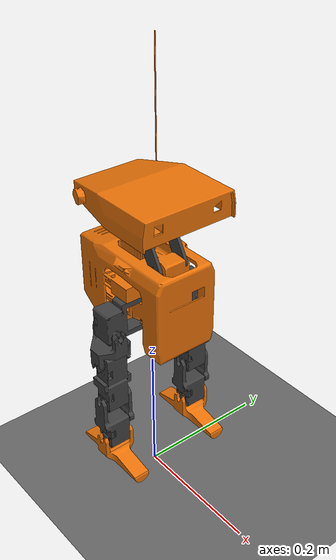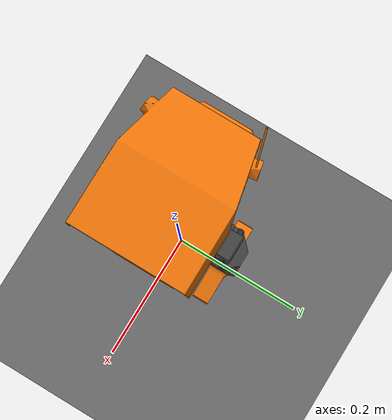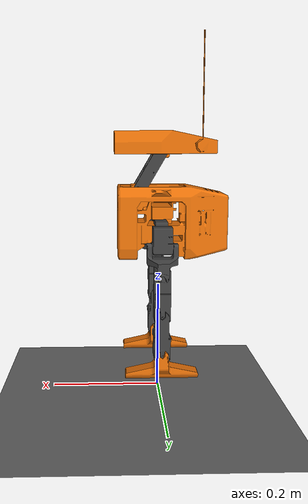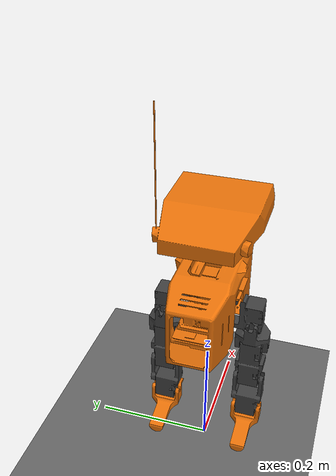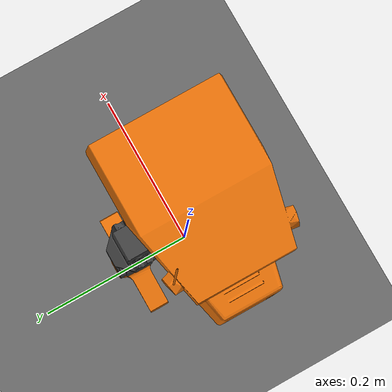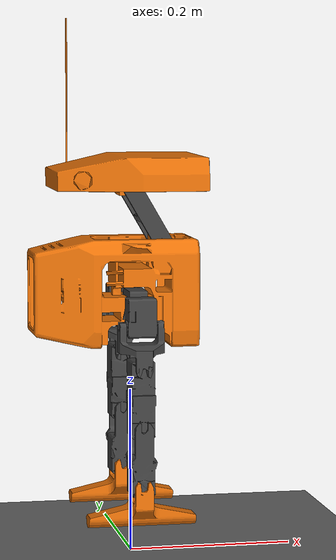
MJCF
<mujoco model="BD-5">
  <option iterations="50" timestep="0.001" solver="PGS" gravity="0 0 -9.81" />

  <compiler angle="radian" meshdir="meshes" eulerseq="zyx" autolimits="true" />

  <default>
    <joint limited="true" damping="1.084" armature="0.045" frictionloss="0.03" />
    <geom condim="4" contype="1" conaffinity="15" friction="0.9 0.2 0.2" solref="0.001 2" />
    <motor ctrllimited="true" />
    <equality solref="0.001 2" />
    <default class="visualgeom">
      <geom material="visualgeom" condim="1" contype="0" conaffinity="0" />
    </default>
  </default>

  <asset>
    <mesh name="BODY" file="BODY.STL" />
    <mesh name="NECK" file="NECK.STL" />
    <mesh name="HEAD" file="HEAD.STL" />
    <mesh name="HIP_LEFT" file="HIP_LEFT.STL" />
    <mesh name="HIP_R_LEFT" file="HIP_R_LEFT.STL" />
    <mesh name="THIGH_LEFT" file="THIGH_LEFT.STL" />
    <mesh name="CALF_LEFT" file="CALF_LEFT.STL" />
    <mesh name="FOOT_LEFT" file="FOOT_LEFT.STL" />
    <mesh name="HIP_RIGHT" file="HIP_RIGHT.STL" />
    <mesh name="HIP_R_RIGHT" file="HIP_R_RIGHT.STL" />
    <mesh name="THIGH_RIGHT" file="THIGH_RIGHT.STL" />
    <mesh name="CALF_RIGHT" file="CALF_RIGHT.STL" />
    <mesh name="FOOT_RIGHT" file="FOOT_RIGHT.STL" />
    <texture name="texplane" type="2d" builtin="checker" rgb1=".0 .0 .0" rgb2=".8 .8 .8" width="100" height="100" />
    <material name="matplane" reflectance="0." texture="texplane" texrepeat="1 1" texuniform="true" />
    <material name="visualgeom" rgba="0.5 0.9 0.2 1" />
  </asset>

  <worldbody>
    <light directional="true" diffuse="0.4 0.4 0.4" specular="0.1 0.1 0.1" pos="0 0 5.0" dir="0 0 -1" castshadow="false" />
    <light directional="true" diffuse="0.6 0.6 0.6" specular="0.2 0.2 0.2" pos="0 0 4" dir="0 0 -1" />
    <geom name="ground" type="plane" pos="0 0 0" size="100 100 0.001" quat="1 0 0 0" material="matplane" condim="3" conaffinity="15" />
    <camera name="fixed" pos="0 -3.0 0.8170777382037414" xyaxes="1 0 0 0 0 1" />
    <camera name="track" mode="trackcom" pos="0 -3.0 0.8170777382037414" xyaxes="1 0 0 0 0 1" />
    <body name="root" pos="0 0 0.3170777382037414" quat="1 0 0 0">
      <freejoint name="root" />
      <site name="imu" size="0.01" pos="0 0 0" />
      <geom type="mesh" rgba="0.9098 0.44314 0.031373 1" mesh="BODY" contype="1" conaffinity="0" density="0" group="1" class="visualgeom" />
      <geom type="mesh" rgba="0.9098 0.44314 0.031373 1" mesh="BODY" />
      <geom pos="0.039 -0.0017032 0.06245" quat="0.965768 0 -0.259409 0" type="mesh" rgba="0.25098 0.25098 0.25098 1" mesh="NECK" contype="1" conaffinity="0" density="0" group="1" class="visualgeom" />
      <geom type="mesh" rgba="0.25098 0.25098 0.25098 1" mesh="NECK" pos="0.039 -0.0017032 0.06245" quat="0.965768 0 -0.259409 0" />
      <geom pos="-0.00208669 -0.0017032 0.133414" quat="0.999999 0 0.00161 0" type="mesh" rgba="0.9098 0.44314 0.031373 1" mesh="HEAD" contype="1" conaffinity="0" density="0" group="1" class="visualgeom" />
      <geom type="mesh" rgba="0.9098 0.44314 0.031373 1" mesh="HEAD" pos="-0.00208669 -0.0017032 0.133414" quat="0.999999 0 0.00161 0" />
      <body name="HIP_LEFT" pos="0 0.01425 -0.0436">
        <inertial pos="0.00185 0.05284 0.02786" quat="0.460341 -0.108037 -0.0721488 0.878185" mass="0.101" diaginertia="4.55664e-05 4.08892e-05 2.89285e-05" />
        <joint name="left_hip_yaw" pos="0 0 0" axis="0 0 1" range="-0.37899 0.37899" actuatorfrcrange="-41 41" damping="1.084" armature="0.045" frictionloss="0.03" />
        <geom type="mesh" rgba="0.25098 0.25098 0.25098 1" mesh="HIP_LEFT" contype="1" conaffinity="0" density="0" group="1" class="visualgeom" />
        <geom type="mesh" rgba="0.25098 0.25098 0.25098 1" mesh="HIP_LEFT" />
        <body name="HIP_R_LEFT" pos="0 0.05925 0.01275">
          <inertial pos="0 0 -0.02515" quat="0.500015 0.499985 -0.500015 0.499985" mass="0.018" diaginertia="7.87081e-06 6.25751e-06 5.92983e-06" />
          <joint name="left_hip_roll" pos="0 0 0" axis="-1 0 0" range="-1.8827 0.38819" actuatorfrcrange="-41 41" damping="1.084" armature="0.045" frictionloss="0.03" />
          <geom type="mesh" rgba="0.25098 0.25098 0.25098 1" mesh="HIP_R_LEFT" contype="1" conaffinity="0" density="0" group="1" class="visualgeom" />
          <geom type="mesh" rgba="0.25098 0.25098 0.25098 1" mesh="HIP_R_LEFT" />
          <body name="THIGH_LEFT" pos="0 0 -0.05">
            <inertial pos="0 0.00215 -0.03525" quat="0.999988 0 0.0049764 0" mass="0.174" diaginertia="0.000111454 9.33677e-05 5.11876e-05" />
            <joint name="left_hip_pitch" pos="0 0 0" axis="0 1 0" range="-1.7492 1.7492" actuatorfrcrange="-41 41" damping="1.084" armature="0.045" frictionloss="0.03" />
            <geom type="mesh" rgba="0.25098 0.25098 0.25098 1" mesh="THIGH_LEFT" contype="1" conaffinity="0" density="0" group="1" class="visualgeom" />
            <geom type="mesh" rgba="0.25098 0.25098 0.25098 1" mesh="THIGH_LEFT" />
            <body name="CALF_LEFT" pos="0 0 -0.0705">
              <inertial pos="0.00034 0.00191 -0.05036" quat="0.900306 0.428328 -0.0231046 -0.0738207" mass="0.098" diaginertia="4.49978e-05 3.42466e-05 2.77625e-05" />
              <joint name="left_knee" pos="0 0 0" axis="0 -1 0" range="0 2.3829" actuatorfrcrange="-41 41" damping="1.084" armature="0.045" frictionloss="0.03" />
              <geom type="mesh" rgba="0.25098 0.25098 0.25098 1" mesh="CALF_LEFT" contype="1" conaffinity="0" density="0" group="1" class="visualgeom" />
              <geom type="mesh" rgba="0.25098 0.25098 0.25098 1" mesh="CALF_LEFT" />
              <body name="FOOT_LEFT" pos="0 0 -0.07064">
                <inertial pos="0 0 -0.03334" quat="0 0.707107 0 0.707107" mass="0.032" diaginertia="3.17443e-05 3.16424e-05 6.9037e-06" />
                <joint name="left_ankle" pos="0 0 0" axis="0 1 0" range="-1.8873 1.8873" actuatorfrcrange="-41 41" damping="1.084" armature="0.045" frictionloss="0.03" />
                <geom type="mesh" rgba="0.9098 0.44314 0.031373 1" mesh="FOOT_LEFT" contype="1" conaffinity="0" density="0" group="1" class="visualgeom" />
                <geom type="mesh" rgba="0.9098 0.44314 0.031373 1" mesh="FOOT_LEFT" />
              </body>
            </body>
          </body>
        </body>
      </body>
      <body name="HIP_RIGHT" pos="0 -0.01425 -0.0436">
        <inertial pos="0.00185 -0.0535 0.02786" quat="0.649192 0.572543 -0.368859 0.338655" mass="0.101" diaginertia="4.61603e-05 4.12116e-05 2.96353e-05" />
        <joint name="right_hip_yaw" pos="0 0 0" axis="0 0 1" range="-0.37899 0.37899" actuatorfrcrange="-41 41" damping="1.084" armature="0.045" frictionloss="0.03" />
        <geom type="mesh" rgba="0.25098 0.25098 0.25098 1" mesh="HIP_RIGHT" contype="1" conaffinity="0" density="0" group="1" class="visualgeom" />
        <geom type="mesh" rgba="0.25098 0.25098 0.25098 1" mesh="HIP_RIGHT" />
        <body name="HIP_R_RIGHT" pos="0 -0.05925 0.01275">
          <inertial pos="0 0 -0.02515" quat="-2.15792e-05 0.707107 2.15792e-05 0.707107" mass="0.018" diaginertia="7.87081e-06 6.25751e-06 5.92983e-06" />
          <joint name="right_hip_roll" pos="0 0 0" axis="1 0 0" range="-1.8827 0.38819" actuatorfrcrange="-41 41" damping="1.084" armature="0.045" frictionloss="0.03" />
          <geom type="mesh" rgba="0.25098 0.25098 0.25098 1" mesh="HIP_R_RIGHT" contype="1" conaffinity="0" density="0" group="1" class="visualgeom" />
          <geom type="mesh" rgba="0.25098 0.25098 0.25098 1" mesh="HIP_R_RIGHT" />
          <body name="THIGH_RIGHT" pos="0 0 -0.05">
            <inertial pos="0 0.00215 -0.03525" quat="0.999988 0 0.0049764 0" mass="0.174" diaginertia="0.000111454 9.33677e-05 5.11876e-05" />
            <joint name="right_hip_pitch" pos="0 0 0" axis="0 1 0" range="-1.7492 1.7492" actuatorfrcrange="-41 41" damping="1.084" armature="0.045" frictionloss="0.03" />
            <geom type="mesh" rgba="0.25098 0.25098 0.25098 1" mesh="THIGH_RIGHT" contype="1" conaffinity="0" density="0" group="1" class="visualgeom" />
            <geom type="mesh" rgba="0.25098 0.25098 0.25098 1" mesh="THIGH_RIGHT" />
            <body name="CALF_RIGHT" pos="0 0 -0.0705">
              <inertial pos="0.00034 0.00191 -0.05036" quat="0.900306 0.428328 -0.0231046 -0.0738207" mass="0.098" diaginertia="4.49978e-05 3.42466e-05 2.77625e-05" />
              <joint name="right_knee" pos="0 0 0" axis="0 -1 0" range="0 2.3829" actuatorfrcrange="-41 41" damping="1.084" armature="0.045" frictionloss="0.03" />
              <geom type="mesh" rgba="0.25098 0.25098 0.25098 1" mesh="CALF_RIGHT" contype="1" conaffinity="0" density="0" group="1" class="visualgeom" />
              <geom type="mesh" rgba="0.25098 0.25098 0.25098 1" mesh="CALF_RIGHT" />
              <body name="FOOT_RIGHT" pos="0 0 -0.07064">
                <inertial pos="0 0 -0.03334" quat="0 0.707107 0 0.707107" mass="0.032" diaginertia="3.17443e-05 3.16424e-05 6.9037e-06" />
                <joint name="right_ankle" pos="0 0 0" axis="0 1 0" range="-1.8873 1.8873" actuatorfrcrange="-41 41" damping="1.084" armature="0.045" frictionloss="0.03" />
                <geom type="mesh" rgba="0.9098 0.44314 0.031373 1" mesh="FOOT_RIGHT" contype="1" conaffinity="0" density="0" group="1" class="visualgeom" />
                <geom type="mesh" rgba="0.9098 0.44314 0.031373 1" mesh="FOOT_RIGHT" />
              </body>
            </body>
          </body>
        </body>
      </body>
    </body>
  </worldbody>

  <actuator>
    <motor name="left_hip_yaw" joint="left_hip_yaw" ctrllimited="true" ctrlrange="-41 41" gear="1" />
    <motor name="left_hip_roll" joint="left_hip_roll" ctrllimited="true" ctrlrange="-41 41" gear="1" />
    <motor name="left_hip_pitch" joint="left_hip_pitch" ctrllimited="true" ctrlrange="-41 41" gear="1" />
    <motor name="left_knee" joint="left_knee" ctrllimited="true" ctrlrange="-41 41" gear="1" />
    <motor name="left_ankle" joint="left_ankle" ctrllimited="true" ctrlrange="-41 41" gear="1" />
    <motor name="right_hip_yaw" joint="right_hip_yaw" ctrllimited="true" ctrlrange="-41 41" gear="1" />
    <motor name="right_hip_roll" joint="right_hip_roll" ctrllimited="true" ctrlrange="-41 41" gear="1" />
    <motor name="right_hip_pitch" joint="right_hip_pitch" ctrllimited="true" ctrlrange="-41 41" gear="1" />
    <motor name="right_knee" joint="right_knee" ctrllimited="true" ctrlrange="-41 41" gear="1" />
    <motor name="right_ankle" joint="right_ankle" ctrllimited="true" ctrlrange="-41 41" gear="1" />
  </actuator>

  <sensor>
    <actuatorpos name="left_hip_yaw_p" actuator="left_hip_yaw" />
    <actuatorvel name="left_hip_yaw_v" actuator="left_hip_yaw" />
    <actuatorfrc name="left_hip_yaw_f" actuator="left_hip_yaw" noise="0.001" />
    <actuatorpos name="left_hip_roll_p" actuator="left_hip_roll" />
    <actuatorvel name="left_hip_roll_v" actuator="left_hip_roll" />
    <actuatorfrc name="left_hip_roll_f" actuator="left_hip_roll" noise="0.001" />
    <actuatorpos name="left_hip_pitch_p" actuator="left_hip_pitch" />
    <actuatorvel name="left_hip_pitch_v" actuator="left_hip_pitch" />
    <actuatorfrc name="left_hip_pitch_f" actuator="left_hip_pitch" noise="0.001" />
    <actuatorpos name="left_knee_p" actuator="left_knee" />
    <actuatorvel name="left_knee_v" actuator="left_knee" />
    <actuatorfrc name="left_knee_f" actuator="left_knee" noise="0.001" />
    <actuatorpos name="left_ankle_p" actuator="left_ankle" />
    <actuatorvel name="left_ankle_v" actuator="left_ankle" />
    <actuatorfrc name="left_ankle_f" actuator="left_ankle" noise="0.001" />
    <actuatorpos name="right_hip_yaw_p" actuator="right_hip_yaw" />
    <actuatorvel name="right_hip_yaw_v" actuator="right_hip_yaw" />
    <actuatorfrc name="right_hip_yaw_f" actuator="right_hip_yaw" noise="0.001" />
    <actuatorpos name="right_hip_roll_p" actuator="right_hip_roll" />
    <actuatorvel name="right_hip_roll_v" actuator="right_hip_roll" />
    <actuatorfrc name="right_hip_roll_f" actuator="right_hip_roll" noise="0.001" />
    <actuatorpos name="right_hip_pitch_p" actuator="right_hip_pitch" />
    <actuatorvel name="right_hip_pitch_v" actuator="right_hip_pitch" />
    <actuatorfrc name="right_hip_pitch_f" actuator="right_hip_pitch" noise="0.001" />
    <actuatorpos name="right_knee_p" actuator="right_knee" />
    <actuatorvel name="right_knee_v" actuator="right_knee" />
    <actuatorfrc name="right_knee_f" actuator="right_knee" noise="0.001" />
    <actuatorpos name="right_ankle_p" actuator="right_ankle" />
    <actuatorvel name="right_ankle_v" actuator="right_ankle" />
    <actuatorfrc name="right_ankle_f" actuator="right_ankle" noise="0.001" />
    <framequat name="orientation" objtype="site" noise="0.001" objname="imu" />
    <gyro name="angular-velocity" site="imu" noise="0.005" cutoff="34.9" />
  </sensor>
</mujoco>
